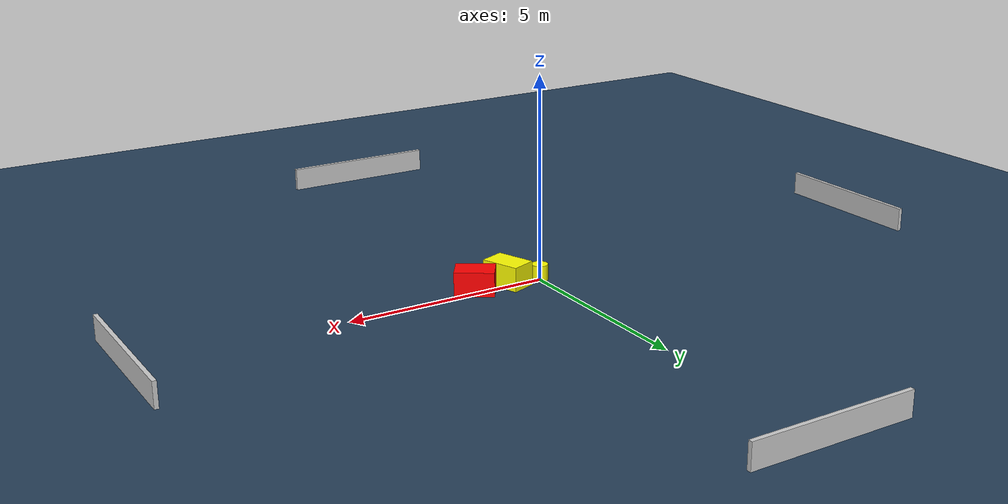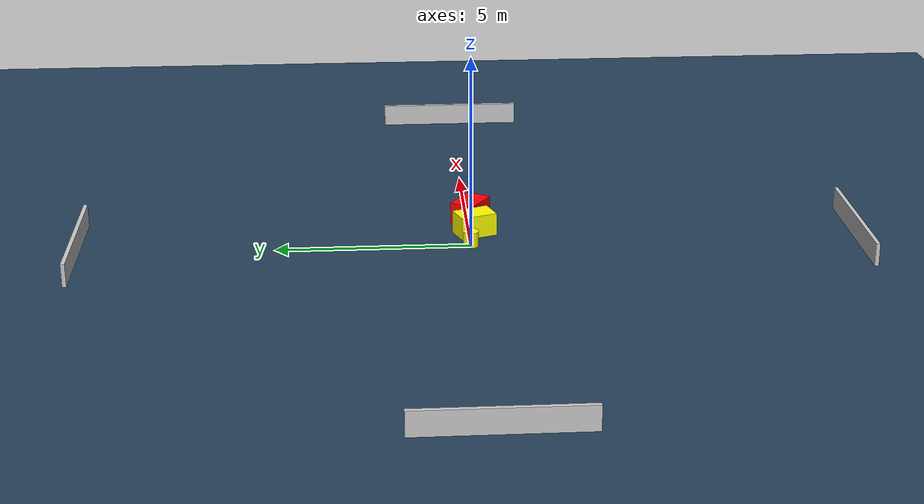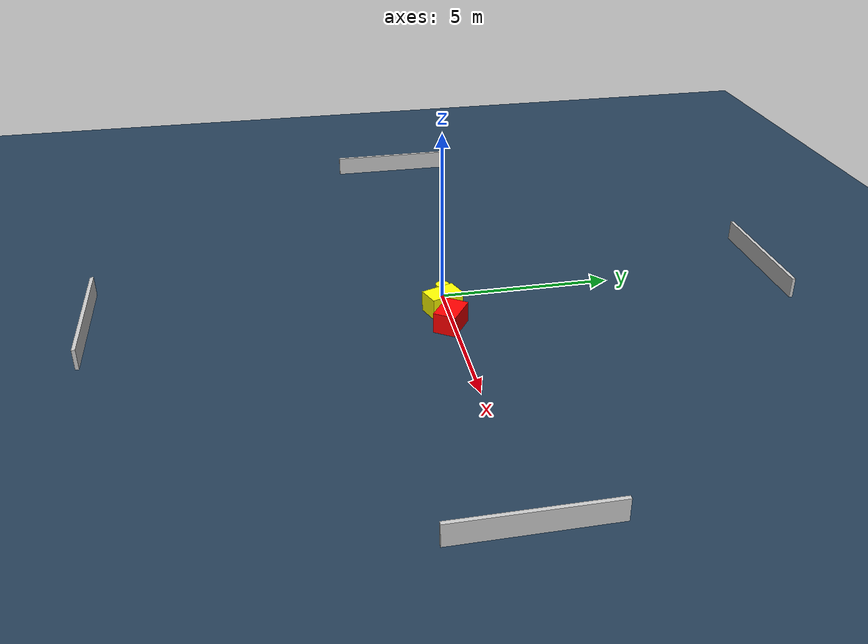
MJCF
<?xml version="1.0" ?>
<mujoco model="generated_environment">
  <option timestep="0.01" integrator="RK4" cone="elliptic"/>
  <default>
    <geom density="1"/>
  </default>
  <asset>
    <texture builtin="gradient" height="3072" name="skybox" rgb1="0.3 0.5 0.7" rgb2="0 0 0" type="skybox" width="512"/>
    <texture builtin="checker" height="300" name="groundplane" rgb1="0.2 0.3 0.4" rgb2="0.1 0.2 0.3" type="2d" width="300"/>
    <material name="groundplane" reflectance="0.2" texrepeat="5 5" texture="groundplane"/>
  </asset>
  <worldbody>
    <light dir="0 0 -1" directional="true" pos="0 0 1.5"/>
    <geom condim="3" friction="0.5 0.005 0.001" material="groundplane" name="floor" pos="0 0 0" size="0 0 0.05" type="plane"/>
    <body name="walls">
      <geom name="wall_1" condim="4" pos="-10.0 0.0 0.3" rgba="0.800000011920929 0.800000011920929 0.800000011920929 1.0" size="0.05 2.0 0.3" type="box"/>
      <geom name="wall_2" condim="4" pos="10.0 0.0 0.3" rgba="0.800000011920929 0.800000011920929 0.800000011920929 1.0" size="0.05 2.0 0.3" type="box"/>
      <geom name="wall_3" condim="4" pos="0.0 -10.0 0.3" rgba="0.800000011920929 0.800000011920929 0.800000011920929 1.0" size="2.0 0.05 0.3" type="box"/>
      <geom name="wall_4" condim="4" pos="0.0 10.0 0.3" rgba="0.800000011920929 0.800000011920929 0.800000011920929 1.0" size="2.0 0.05 0.3" type="box"/>
    </body>
    <body name="robot">
      <joint name="joint_x" type="slide" pos="0 0 0" axis="1 0 0"/>
      <joint name="joint_y" type="slide" pos="0 0 0" axis="0 1 0"/>
      <geom name="robot" type="cylinder" pos="0.0 0.0 0.2" size="0.2 0.2 0.0" mass="5.0" friction="1.0 0.005 0.0001" condim="4" rgba="1.0 1.0 0.0 1.0"/>
    </body>
    <body name="obstacle_1_movable">
      <geom name="obstacle_1_movable" condim="4" pos="0.805182362372004 -0.14821439327306196 0.3" euler="0 0 20.30207326823243" friction="0.0 0.005 0.001" rgba="1.0 1.0 0.0 1.0" size="0.31408845910569627 0.48994455586626295 0.3" type="box" mass="0.1"/>
      <joint type="free"/>
    </body>
    <body name="obstacle_2_static">
      <geom name="obstacle_2_static" condim="4" pos="1.7302209629908438 -0.09541207657225177 0.3" euler="0 0 146.33529499994515" friction="0.0 0.005 0.001" rgba="1.0 0.0 0.0 1.0" size="0.4750188125054982 0.3264328900315018 0.3" type="box"/>
    </body>
  </worldbody>
  <actuator>
    <motor name="actuator_x" joint="joint_x" gear="1" ctrlrange="-1 1"/>
    <motor name="actuator_y" joint="joint_y" gear="1" ctrlrange="-1 1"/>
  </actuator>
</mujoco>
